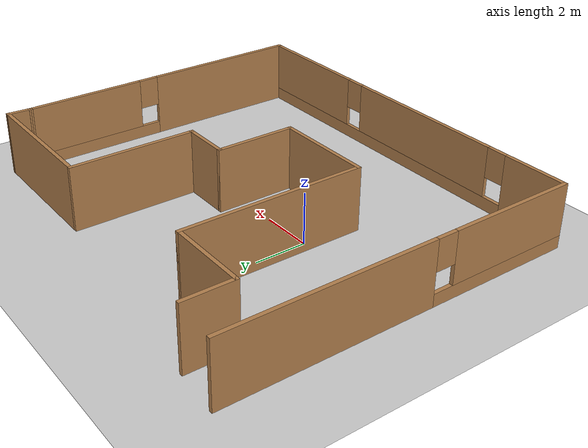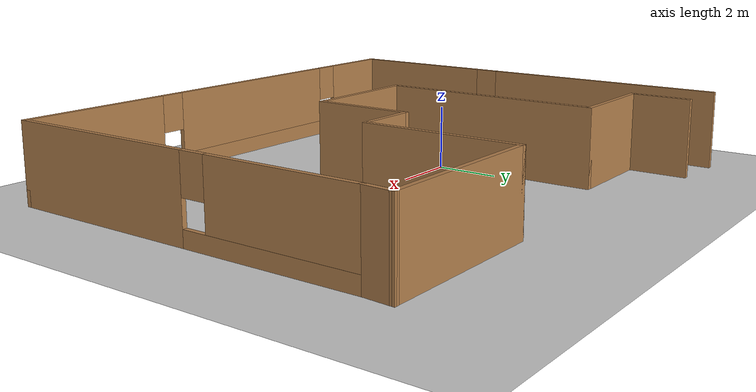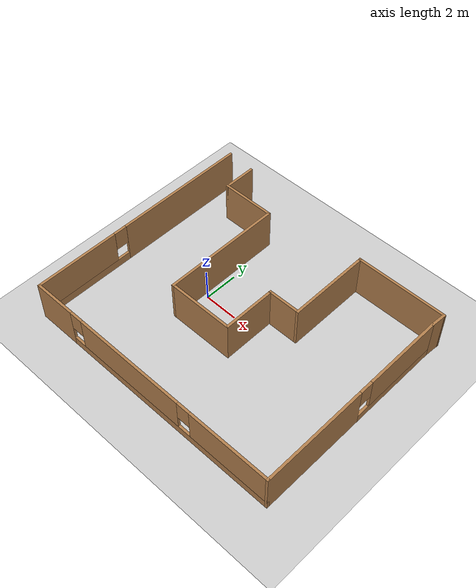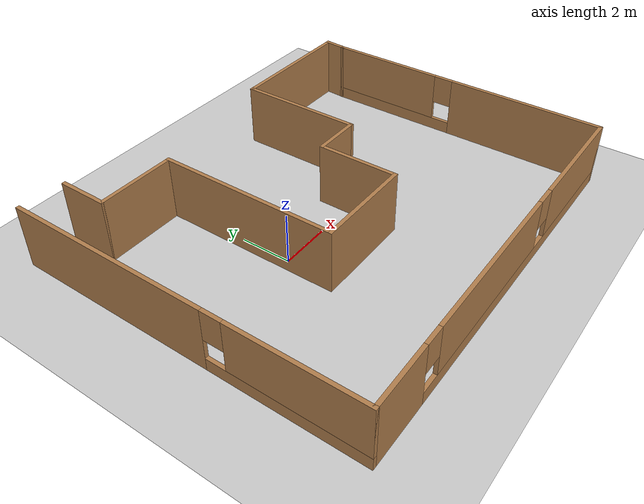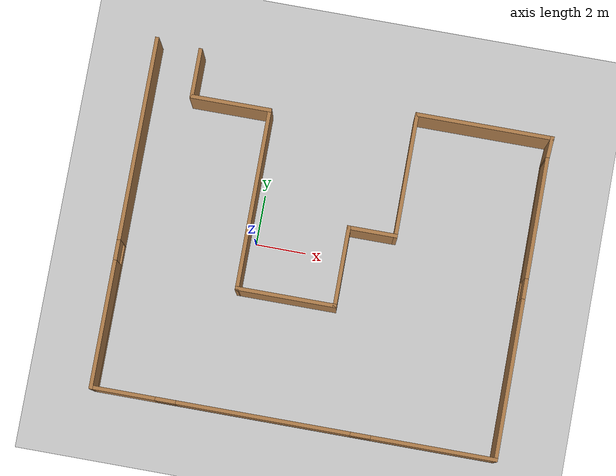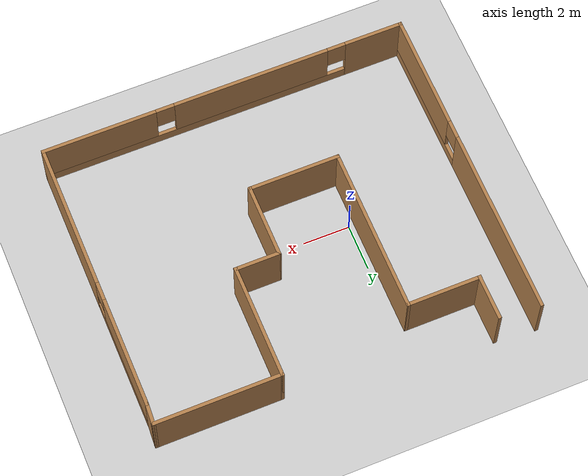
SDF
<sdf version="1.7">
 <world name="default">
  <light name="sun" type="directional">
   <pose>0 0 10 0 -0 0</pose>
   <diffuse>0.8 0.8 0.8 1</diffuse>
   <specular>0.2 0.2 0.2 1</specular>
   <attenuation>
    <range>1000</range>
    <constant>0.9</constant>
    <linear>0.01</linear>
    <quadratic>0.001</quadratic>
   </attenuation>
   <direction>-0.5 0.1 -0.9</direction>
   <spot><inner_angle>0</inner_angle><outer_angle>0</outer_angle><falloff>0</falloff></spot>
  </light>
  <model name="ground_plane">
   <static>1</static>
   <link name="link">
    <collision name="collision">
     <geometry><plane><normal>0 0 1</normal><size>100 100</size></plane></geometry>
     <surface>
      <contact><collide_bitmask>65535</collide_bitmask></contact>
      <friction><ode><mu>100</mu><mu2>50</mu2></ode></friction>
     </surface>
    </collision>
    <visual name="visual">
     <cast_shadows>0</cast_shadows>
     <geometry><plane><normal>0 0 1</normal><size>100 100</size></plane></geometry>
     <material>
      <script><uri>file://media/materials/scripts/gazebo.material</uri><name>Gazebo/Grey</name></script>
     </material>
    </visual>
   </link>
  </model>
  <gravity>0 0 -9.8</gravity>
  <magnetic_field>6e-06 2.3e-05 -4.2e-05</magnetic_field>
  <atmosphere type="adiabatic"/>
  <physics type="ode">
   <max_step_size>0.001</max_step_size>
   <real_time_factor>1</real_time_factor>
   <real_time_update_rate>1000</real_time_update_rate>
  </physics>
  <scene><ambient>0.4 0.4 0.4 1</ambient><background>0.7 0.7 0.7 1</background><shadows>1</shadows></scene>
  <spherical_coordinates>
   <surface_model>EARTH_WGS84</surface_model>
   <latitude_deg>0</latitude_deg>
   <longitude_deg>0</longitude_deg>
   <elevation>0</elevation>
   <heading_deg>0</heading_deg>
  </spherical_coordinates>
  <model name="rest_2">
   <pose>2.78562 0.12891 0 0 -0 0</pose>
   <link name="Wall_16">
    <pose>-7.95686 -0 0 0 -0 -1.5708</pose>
    <visual name="Wall_16_Visual_0">
     <pose>-2.94125 0 1.25 0 -0 0</pose>
     <geometry><box><size>8.1175 0.15 2.5</size></box></geometry>
     <material>
      <script><uri>file://media/materials/scripts/gazebo.material</uri><name>Gazebo/Wood</name></script>
      <ambient>1 1 1 1</ambient>
     </material>
     <meta><layer>0</layer></meta>
    </visual>
    <collision name="Wall_16_Collision_0">
     <geometry><box><size>8.1175 0.15 2.5</size></box></geometry>
     <pose>-2.94125 0 1.25 0 -0 0</pose>
    </collision>
    <visual name="Wall_16_Visual_1">
     <pose>4.05875 0 0.25 0 -0 0</pose>
     <geometry><box><size>5.8825 0.15 0.5</size></box></geometry>
     <material>
      <script><uri>file://media/materials/scripts/gazebo.material</uri><name>Gazebo/Wood</name></script>
      <ambient>1 1 1 1</ambient>
     </material>
     <meta><layer>0</layer></meta>
    </visual>
    <collision name="Wall_16_Collision_1">
     <geometry><box><size>5.8825 0.15 0.5</size></box></geometry>
     <pose>4.05875 0 0.25 0 -0 0</pose>
    </collision>
    <visual name="Wall_16_Visual_2">
     <pose>4.45875 0 1.5 0 -0 0</pose>
     <geometry><box><size>5.0825 0.15 2</size></box></geometry>
     <material>
      <script><uri>file://media/materials/scripts/gazebo.material</uri><name>Gazebo/Wood</name></script>
      <ambient>1 1 1 1</ambient>
     </material>
     <meta><layer>0</layer></meta>
    </visual>
    <collision name="Wall_16_Collision_2">
     <geometry><box><size>5.0825 0.15 2</size></box></geometry>
     <pose>4.45875 0 1.5 0 -0 0</pose>
    </collision>
    <visual name="Wall_16_Visual_3">
     <pose>1.5175 0 1.9 0 -0 0</pose>
     <geometry><box><size>0.8 0.15 1.2</size></box></geometry>
     <material>
      <script><uri>file://media/materials/scripts/gazebo.material</uri><name>Gazebo/Wood</name></script>
      <ambient>1 1 1 1</ambient>
     </material>
     <meta><layer>0</layer></meta>
    </visual>
    <collision name="Wall_16_Collision_3">
     <geometry><box><size>0.8 0.15 1.2</size></box></geometry>
     <pose>1.5175 0 1.9 0 -0 0</pose>
    </collision>
   </link>
   <link name="Wall_18">
    <pose>-0.031855 -6.925 0 0 -0 0</pose>
    <visual name="Wall_18_Visual_0">
     <pose>-6.70268 0 1.25 0 -0 0</pose>
     <geometry><box><size>2.59465 0.15 2.5</size></box></geometry>
     <material>
      <script><uri>file://media/materials/scripts/gazebo.material</uri><name>Gazebo/Wood</name></script>
      <ambient>1 1 1 1</ambient>
     </material>
     <meta><layer>0</layer></meta>
    </visual>
    <collision name="Wall_18_Collision_0">
     <geometry><box><size>2.59465 0.15 2.5</size></box></geometry>
     <pose>-6.70268 0 1.25 0 -0 0</pose>
    </collision>
    <visual name="Wall_18_Visual_1">
     <pose>1.29733 0 0.25 0 -0 0</pose>
     <geometry><box><size>13.4054 0.15 0.5</size></box></geometry>
     <material>
      <script><uri>file://media/materials/scripts/gazebo.material</uri><name>Gazebo/Wood</name></script>
      <ambient>1 1 1 1</ambient>
     </material>
     <meta><layer>0</layer></meta>
    </visual>
    <collision name="Wall_18_Collision_1">
     <geometry><box><size>13.4054 0.15 0.5</size></box></geometry>
     <pose>1.29733 0 0.25 0 -0 0</pose>
    </collision>
    <visual name="Wall_18_Visual_2">
     <pose>-1.18845 0 1.5 0 -0 0</pose>
     <geometry><box><size>6.83379 0.15 2</size></box></geometry>
     <material>
      <script><uri>file://media/materials/scripts/gazebo.material</uri><name>Gazebo/Wood</name></script>
      <ambient>1 1 1 1</ambient>
     </material>
     <meta><layer>0</layer></meta>
    </visual>
    <collision name="Wall_18_Collision_2">
     <geometry><box><size>6.83379 0.15 2</size></box></geometry>
     <pose>-1.18845 0 1.5 0 -0 0</pose>
    </collision>
    <visual name="Wall_18_Visual_3">
     <pose>5.51422 0 1.5 0 -0 0</pose>
     <geometry><box><size>4.97156 0.15 2</size></box></geometry>
     <material>
      <script><uri>file://media/materials/scripts/gazebo.material</uri><name>Gazebo/Wood</name></script>
      <ambient>1 1 1 1</ambient>
     </material>
     <meta><layer>0</layer></meta>
    </visual>
    <collision name="Wall_18_Collision_3">
     <geometry><box><size>4.97156 0.15 2</size></box></geometry>
     <pose>5.51422 0 1.5 0 -0 0</pose>
    </collision>
    <visual name="Wall_18_Visual_4">
     <pose>-5.00535 0 1.9 0 -0 0</pose>
     <geometry><box><size>0.8 0.15 1.2</size></box></geometry>
     <material>
      <script><uri>file://media/materials/scripts/gazebo.material</uri><name>Gazebo/Wood</name></script>
      <ambient>1 1 1 1</ambient>
     </material>
     <meta><layer>0</layer></meta>
    </visual>
    <collision name="Wall_18_Collision_4">
     <geometry><box><size>0.8 0.15 1.2</size></box></geometry>
     <pose>-5.00535 0 1.9 0 -0 0</pose>
    </collision>
    <visual name="Wall_18_Visual_5">
     <pose>2.62844 0 1.9 0 -0 0</pose>
     <geometry><box><size>0.8 0.15 1.2</size></box></geometry>
     <material>
      <script><uri>file://media/materials/scripts/gazebo.material</uri><name>Gazebo/Wood</name></script>
      <ambient>1 1 1 1</ambient>
     </material>
     <meta><layer>0</layer></meta>
    </visual>
    <collision name="Wall_18_Collision_5">
     <geometry><box><size>0.8 0.15 1.2</size></box></geometry>
     <pose>2.62844 0 1.9 0 -0 0</pose>
    </collision>
   </link>
   <link name="Wall_20">
    <pose>7.89314 -1 0 0 -0 1.5708</pose>
    <visual name="Wall_20_Visual_0">
     <pose>-2.80794 0 1.25 0 -0 0</pose>
     <geometry><box><size>6.38412 0.15 2.5</size></box></geometry>
     <material>
      <script><uri>file://media/materials/scripts/gazebo.material</uri><name>Gazebo/Wood</name></script>
      <ambient>1 1 1 1</ambient>
     </material>
     <meta><layer>0</layer></meta>
    </visual>
    <collision name="Wall_20_Collision_0">
     <geometry><box><size>6.38412 0.15 2.5</size></box></geometry>
     <pose>-2.80794 0 1.25 0 -0 0</pose>
    </collision>
    <visual name="Wall_20_Visual_1">
     <pose>3.19206 0 0.25 0 -0 0</pose>
     <geometry><box><size>5.61588 0.15 0.5</size></box></geometry>
     <material>
      <script><uri>file://media/materials/scripts/gazebo.material</uri><name>Gazebo/Wood</name></script>
      <ambient>1 1 1 1</ambient>
     </material>
     <meta><layer>0</layer></meta>
    </visual>
    <collision name="Wall_20_Collision_1">
     <geometry><box><size>5.61588 0.15 0.5</size></box></geometry>
     <pose>3.19206 0 0.25 0 -0 0</pose>
    </collision>
    <visual name="Wall_20_Visual_2">
     <pose>3.59206 0 1.5 0 -0 0</pose>
     <geometry><box><size>4.81588 0.15 2</size></box></geometry>
     <material>
      <script><uri>file://media/materials/scripts/gazebo.material</uri><name>Gazebo/Wood</name></script>
      <ambient>1 1 1 1</ambient>
     </material>
     <meta><layer>0</layer></meta>
    </visual>
    <collision name="Wall_20_Collision_2">
     <geometry><box><size>4.81588 0.15 2</size></box></geometry>
     <pose>3.59206 0 1.5 0 -0 0</pose>
    </collision>
    <visual name="Wall_20_Visual_3">
     <pose>0.784116 0 1.9 0 -0 0</pose>
     <geometry><box><size>0.8 0.15 1.2</size></box></geometry>
     <material>
      <script><uri>file://media/materials/scripts/gazebo.material</uri><name>Gazebo/Wood</name></script>
      <ambient>1 1 1 1</ambient>
     </material>
     <meta><layer>0</layer></meta>
    </visual>
    <collision name="Wall_20_Collision_3">
     <geometry><box><size>0.8 0.15 1.2</size></box></geometry>
     <pose>0.784116 0 1.9 0 -0 0</pose>
    </collision>
   </link>
   <link name="Wall_22">
    <collision name="Wall_22_Collision">
     <geometry><box><size>2 0.15 2.5</size></box></geometry>
     <pose>0 0 1.25 0 -0 0</pose>
    </collision>
    <visual name="Wall_22_Visual">
     <pose>0 0 1.25 0 -0 0</pose>
     <geometry><box><size>2 0.15 2.5</size></box></geometry>
     <material>
      <script><uri>file://media/materials/scripts/gazebo.material</uri><name>Gazebo/Wood</name></script>
      <ambient>1 1 1 1</ambient>
     </material>
     <meta><layer>0</layer></meta>
    </visual>
    <pose>-6.1981 5.85594 0 0 -0 -1.5708</pose>
   </link>
   <link name="Wall_23">
    <collision name="Wall_23_Collision">
     <geometry><box><size>3.25 0.15 2.5</size></box></geometry>
     <pose>0 0 1.25 0 -0 0</pose>
    </collision>
    <visual name="Wall_23_Visual">
     <pose>0 0 1.25 0 -0 0</pose>
     <geometry><box><size>3.25 0.15 2.5</size></box></geometry>
     <material>
      <script><uri>file://media/materials/scripts/gazebo.material</uri><name>Gazebo/Wood</name></script>
      <ambient>1 1 1 1</ambient>
     </material>
     <meta><layer>0</layer></meta>
    </visual>
    <pose>-4.6481 4.93094 0 0 -0 0</pose>
   </link>
   <link name="Wall_24">
    <collision name="Wall_24_Collision">
     <geometry><box><size>7.25 0.15 2.5</size></box></geometry>
     <pose>0 0 1.25 0 -0 0</pose>
    </collision>
    <visual name="Wall_24_Visual">
     <pose>0 0 1.25 0 -0 0</pose>
     <geometry><box><size>7.25 0.15 2.5</size></box></geometry>
     <material>
      <script><uri>file://media/materials/scripts/gazebo.material</uri><name>Gazebo/Wood</name></script>
      <ambient>1 1 1 1</ambient>
     </material>
     <meta><layer>0</layer></meta>
    </visual>
    <pose>-3.0981 1.38094 0 0 -0 -1.5708</pose>
   </link>
   <link name="Wall_25">
    <collision name="Wall_25_Collision">
     <geometry><box><size>4 0.15 2.5</size></box></geometry>
     <pose>0 0 1.25 0 -0 0</pose>
    </collision>
    <visual name="Wall_25_Visual">
     <pose>0 0 1.25 0 -0 0</pose>
     <geometry><box><size>4 0.15 2.5</size></box></geometry>
     <material>
      <script><uri>file://media/materials/scripts/gazebo.material</uri><name>Gazebo/Wood</name></script>
      <ambient>1 1 1 1</ambient>
     </material>
     <meta><layer>0</layer></meta>
    </visual>
    <pose>-1.1731 -2.16906 0 0 -0 0</pose>
   </link>
   <link name="Wall_26">
    <collision name="Wall_26_Collision">
     <geometry><box><size>3.25 0.15 2.5</size></box></geometry>
     <pose>0 0 1.25 0 -0 0</pose>
    </collision>
    <visual name="Wall_26_Visual">
     <pose>0 0 1.25 0 -0 0</pose>
     <geometry><box><size>3.25 0.15 2.5</size></box></geometry>
     <material>
      <script><uri>file://media/materials/scripts/gazebo.material</uri><name>Gazebo/Wood</name></script>
      <ambient>1 1 1 1</ambient>
     </material>
     <meta><layer>0</layer></meta>
    </visual>
    <pose>0.751896 -0.619058 0 0 -0 1.5708</pose>
   </link>
   <link name="Wall_27">
    <collision name="Wall_27_Collision">
     <geometry><box><size>2 0.15 2.5</size></box></geometry>
     <pose>0 0 1.25 0 -0 0</pose>
    </collision>
    <visual name="Wall_27_Visual">
     <pose>0 0 1.25 0 -0 0</pose>
     <geometry><box><size>2 0.15 2.5</size></box></geometry>
     <material>
      <script><uri>file://media/materials/scripts/gazebo.material</uri><name>Gazebo/Wood</name></script>
      <ambient>1 1 1 1</ambient>
     </material>
     <meta><layer>0</layer></meta>
    </visual>
    <pose>1.6769 0.930942 0 0 -0 0</pose>
   </link>
   <link name="Wall_28">
    <collision name="Wall_28_Collision">
     <geometry><box><size>5 0.15 2.5</size></box></geometry>
     <pose>0 0 1.25 0 -0 0</pose>
    </collision>
    <visual name="Wall_28_Visual">
     <pose>0 0 1.25 0 -0 0</pose>
     <geometry><box><size>5 0.15 2.5</size></box></geometry>
     <material>
      <script><uri>file://media/materials/scripts/gazebo.material</uri><name>Gazebo/Wood</name></script>
      <ambient>1 1 1 1</ambient>
     </material>
     <meta><layer>0</layer></meta>
    </visual>
    <pose>2.6019 3.35594 0 0 -0 1.5708</pose>
   </link>
   <link name="Wall_29">
    <collision name="Wall_29_Collision">
     <geometry><box><size>5.5 0.15 2.5</size></box></geometry>
     <pose>0 0 1.25 0 -0 0</pose>
    </collision>
    <visual name="Wall_29_Visual">
     <pose>0 0 1.25 0 -0 0</pose>
     <geometry><box><size>5.5 0.15 2.5</size></box></geometry>
     <material>
      <script><uri>file://media/materials/scripts/gazebo.material</uri><name>Gazebo/Wood</name></script>
      <ambient>1 1 1 1</ambient>
     </material>
     <meta><layer>0</layer></meta>
    </visual>
    <pose>5.2769 5.78094 0 0 -0 0</pose>
   </link>
   <link name="Wall_30">
    <collision name="Wall_30_Collision">
     <geometry><box><size>1.00796 0.15 2.5</size></box></geometry>
     <pose>0 0 1.25 0 -0 0</pose>
    </collision>
    <visual name="Wall_30_Visual">
     <pose>0 0 1.25 0 -0 0</pose>
     <geometry><box><size>1.00796 0.15 2.5</size></box></geometry>
     <material>
      <script><uri>file://media/materials/scripts/gazebo.material</uri><name>Gazebo/Wood</name></script>
      <ambient>1 1 1 1</ambient>
     </material>
     <meta><layer>0</layer></meta>
    </visual>
    <pose>7.92252 5.35297 0 0 -0 -1.63933</pose>
   </link>
   <static>1</static>
  </model>
 </world>
</sdf>
